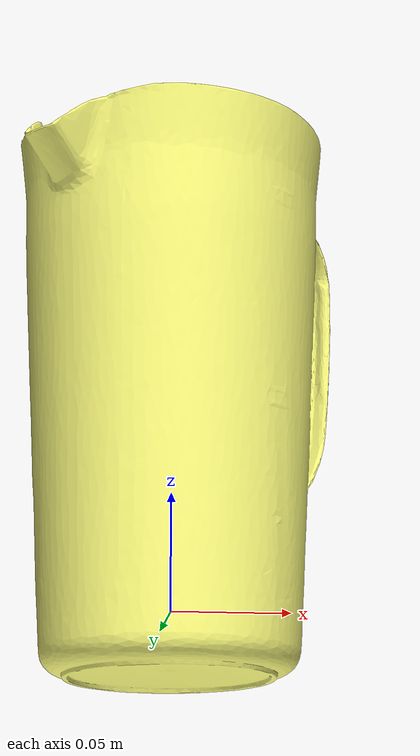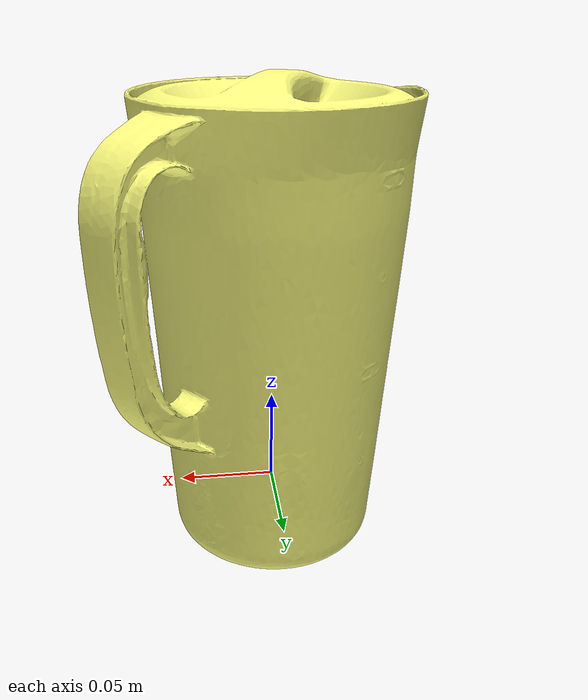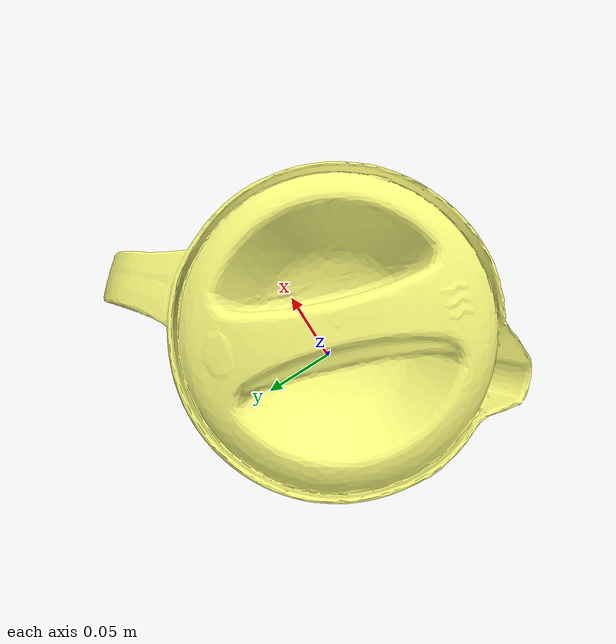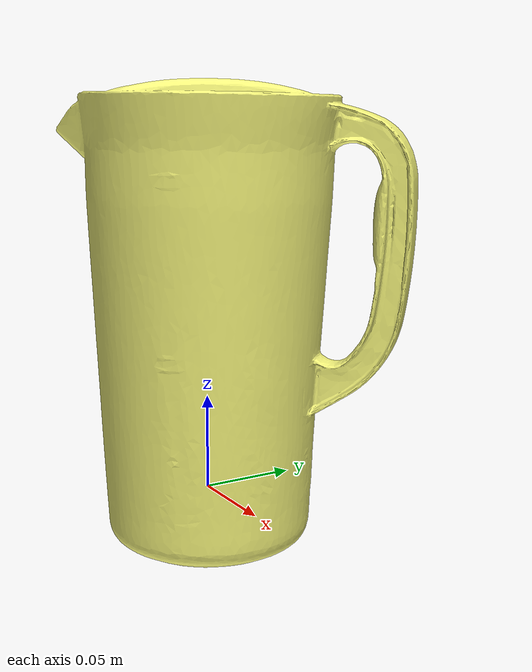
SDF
<?xml version="1.0" ?>
<sdf version='1.4'>
  <model name="pitcher_base">
      <static>0</static>
      <link name='link'>
        <inertial>
          <!-- Weight = 184g -> 0.184-->
          <mass>0.184</mass>
          <inertia>
            <ixx>0.000013</ixx>
            <ixy>0.000000</ixy>
            <ixz>0.000000</ixz>
            <iyy>0.0</iyy>
            <iyz>0.000013</iyz>
            <izz>0.00018046111</izz>
          </inertia>
        </inertial>
        <collision name='collision'>
          <geometry>
            <mesh>
              <uri>model://pitcher_base/meshes/pitcher_base.stl</uri>
              <scale>1 1 1</scale>
            </mesh>
          </geometry>
          <surface>
            <friction>
              <ode>
                <mu>30.0</mu>
                <mu2>30.0</mu2>
              </ode>
            </friction>
          </surface>
        </collision>
        <visual name='visual'>
          <geometry>
            <mesh>
              <uri>model://pitcher_base/meshes/pitcher_base.dae</uri>
              <scale>1 1 1</scale>
            </mesh>
          </geometry>
          <material>
            <diffuse>1 1 0.5 1</diffuse>
          </material>
        </visual>
        <velocity_decay>
          <linear>0.000000</linear>
          <angular>0.000000</angular>
        </velocity_decay>
        <self_collide>0</self_collide>
        <kinematic>0</kinematic>
        <gravity>1</gravity>
      </link>
  </model>
</sdf>
